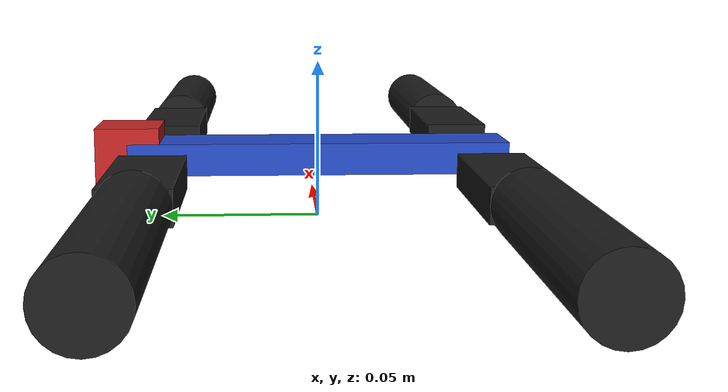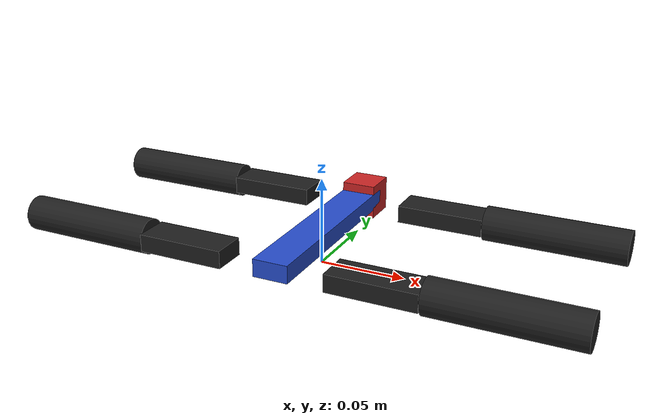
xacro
<?xml version="1.6"?>
<!-- Revolute-Revolute Manipulator -->
<robot name="quadquad" xmlns:xacro="http://www.ros.org/wiki/xacro">

  <!-- Constants for robot dimensions -->
  <xacro:property name="PI" value="3.1415926535897931"/>
  <xacro:property name="mass" value="10" /> <!-- arbitrary value for mass -->
  <xacro:property name="height" value=".02" />
  <xacro:property name="camera_link" value="0.02" /> <!-- Size of square 'camera' box -->

  <xacro:property name="bodyL" value="0.12" />
  <xacro:property name="bodyW" value="0.02" />
  <xacro:property name="bodyD" value="0.01" />

  <xacro:property name="hipL" value="0.05" />
  <xacro:property name="hipW" value="0.02" />
  <xacro:property name="hipD" value="0.01" />

  <xacro:property name="hipJointOffsetX" value="0.03" />
  <xacro:property name="hipJointOffsetY" value="0.05" />

  <xacro:property name="legJointOffsetX" value="0.05" />
  <xacro:property name="legJointOffsetY" value="0.00" />

  <xacro:property name="max_vel" value="4" />

  <xacro:property name="legL" value="0.08" />
  <xacro:property name="legR" value="0.01" />

  <xacro:property name="servoeffort" value="300" />

  <!-- Import all Gazebo-customization elements, including Gazebo colors -->
  <xacro:include filename="$(find quadquad_design)/design/quadquad.gazebo" />

  <!-- Import Rviz colors -->
  <xacro:include filename="$(find quadquad_design)/design/materials.xacro" />

  <!-- Base Link -->
  <link name="body">
    <collision>
      <origin xyz="0 0 ${height}" rpy="0 0 0"/>
      <geometry>
	       <box size="${bodyW} ${bodyL} ${bodyD}"/>
      </geometry>
    </collision>

    <visual>
      <origin xyz="0 0 ${height}" rpy="0 0 0"/>
      <geometry>
	       <box size="${bodyW} ${bodyL} ${bodyD}"/>
      </geometry>
      <material name="blue"/>
    </visual>

    <inertial>
      <origin xyz="0 0 ${height}" rpy="0 0 0"/>
      <mass value="${mass}"/>
      <inertia
    	  ixx="${mass / .1 * (hipW*hipW + bodyL*bodyL)}" ixy="0.0" ixz="0.0"
    	  iyy="${mass / .1 * (bodyL*bodyL + hipW*hipW)}" iyz="0.0"
    	  izz="${mass / .1 * (hipW*hipW + hipW*hipW)}"/>
    </inertial>
  </link>

  <!-- Camera link -->
  <joint name="camera_joint" type="fixed">
    <axis xyz="0 0 0" />
    <origin xyz="0 ${bodyL/2} ${height}" rpy="0 0 ${PI/2}"/>
    <parent link="body"/>
    <child link="camera_link"/>
  </joint>

  <!-- Camera -->

  <link name="camera_link">
    <collision>
      <origin xyz="0 0 0" rpy="0 0 0"/>
      <geometry>
         <box size="${camera_link} ${camera_link} ${camera_link}"/>
      </geometry>
    </collision>

    <visual>
      <origin xyz="0 0 0" rpy="0 0 0"/>
      <geometry>
         <box size="${camera_link} ${camera_link} ${camera_link}"/>
      </geometry>
      <material name="red"/>
    </visual>

    <inertial>
      <mass value="1e-5" />
      <origin xyz="0 0 0" rpy="0 0 0"/>
      <inertia ixx="1e-6" ixy="0" ixz="0" iyy="1e-6" iyz="0" izz="1e-6" />
    </inertial>
  </link>

<!-- hips -->
  <!-- flHip -->
  <!--${hipJointOffsetX + hipL/2} ${hipJointOffsetY + hipW/2} ${height}-->
  <link name="flHip">
    <collision>
      <origin xyz="${-hipL/2} 0 0" rpy="0 0 0"/>
      <geometry>
        <box size="${hipL} ${hipW} ${hipD}"/>
      </geometry>
    </collision>

    <visual>
      <origin xyz="${-hipL/2} 0 0" rpy="0 0 0"/>
      <geometry>
        <box size="${hipL} ${hipW} ${hipD}"/>
      </geometry>
      <material name="black"/>
    </visual>

    <inertial>
      <origin xyz="${-hipL/2} 0 0" rpy="0 0 0"/>
        <mass value="${mass}"/>
      <inertia
        ixx="${mass / .1 * (hipL*hipL + hipW*hipW)}" ixy="0.0" ixz="0.0"
        iyy="${mass / .1 * (hipW*hipW + hipL*hipL)}" iyz="0.0"
        izz="${mass / .1 * (hipL*hipL + hipL*hipL)}"/>
    </inertial>
  </link>

  <joint name="flHip_joint" type="revolute">
    <parent link="body"/>
    <child link="flHip"/>
    <origin xyz="${-hipJointOffsetX} ${hipJointOffsetY} ${height}" rpy="0 0 0"/>
    <axis xyz="0 0 1"/>
    <dynamics damping="0.7"/>
    <limit lower="${-PI/2}" upper="${PI/2}" effort="${servoeffort}" velocity="${max_vel}" />
  </joint>

    <!-- frHip -->
  <!--${hipJointOffsetX + hipL/2} ${hipJointOffsetY + hipW/2} ${height}-->
  <link name="frHip">
    <collision>
      <origin xyz="${hipL/2} 0 0" rpy="0 0 0"/>
      <geometry>
        <box size="${hipL} ${hipW} ${hipD}"/>
      </geometry>
    </collision>

    <visual>
      <origin xyz="${hipL/2} 0 0" rpy="0 0 0"/>
      <geometry>
        <box size="${hipL} ${hipW} ${hipD}"/>
      </geometry>
      <material name="black"/>
    </visual>

    <inertial>
      <origin xyz="${hipL/2} 0 0" rpy="0 0 0"/>
        <mass value="${mass}"/>
      <inertia
        ixx="${mass / .1 * (hipL*hipL + hipW*hipW)}" ixy="0.0" ixz="0.0"
        iyy="${mass / .1 * (hipW*hipW + hipL*hipL)}" iyz="0.0"
        izz="${mass / .1 * (hipL*hipL + hipL*hipL)}"/>
    </inertial>
  </link>

  <joint name="frHip_joint" type="revolute">
    <parent link="body"/>
    <child link="frHip"/>
    <origin xyz="${hipJointOffsetX} ${hipJointOffsetY} ${height}" rpy="0 0 0"/>
    <axis xyz="0 0 -1"/>
    <dynamics damping="0.7"/>
    <limit lower="${-PI/2}" upper="${PI/2}" effort="${servoeffort}" velocity="${max_vel}" />
  </joint>

  <!-- blHip -->
  <!--${hipJointOffsetX + hipL/2} ${hipJointOffsetY + hipW/2} ${height}-->
  <link name="blHip">
    <collision>
      <origin xyz="${-hipL/2} 0 0" rpy="0 0 0"/>
      <geometry>
        <box size="${hipL} ${hipW} ${hipD}"/>
      </geometry>
    </collision>

    <visual>
      <origin xyz="${-hipL/2} 0 0" rpy="0 0 0"/>
      <geometry>
        <box size="${hipL} ${hipW} ${hipD}"/>
      </geometry>
      <material name="black"/>
    </visual>

    <inertial>
      <origin xyz="${-hipL/2} 0 0" rpy="0 0 0"/>
        <mass value="${mass}"/>
      <inertia
        ixx="${mass / .1 * (hipL*hipL + hipW*hipW)}" ixy="0.0" ixz="0.0"
        iyy="${mass / .1 * (hipW*hipW + hipL*hipL)}" iyz="0.0"
        izz="${mass / .1 * (hipL*hipL + hipL*hipL)}"/>
    </inertial>
  </link>

  <joint name="blHip_joint" type="revolute">
    <parent link="body"/>
    <child link="blHip"/>
    <origin xyz="${-hipJointOffsetX} ${-hipJointOffsetY} ${height}" rpy="0 0 0"/>
    <axis xyz="0 0 1"/>
    <dynamics damping="0.7"/>
    <limit lower="${-PI/2}" upper="${PI/2}" effort="${servoeffort}" velocity="${max_vel}" />
  </joint>

  <!-- brHip -->
  <!--${hipJointOffsetX + hipL/2} ${hipJointOffsetY + hipW/2} ${height}-->
  <link name="brHip">
    <collision>
      <origin xyz="${hipL/2} 0 0" rpy="0 0 0"/>
      <geometry>
        <box size="${hipL} ${hipW} ${hipD}"/>
      </geometry>
    </collision>

    <visual>
      <origin xyz="${hipL/2} 0 0" rpy="0 0 0"/>
      <geometry>
        <box size="${hipL} ${hipW} ${hipD}"/>
      </geometry>
      <material name="black"/>
    </visual>

    <inertial>
      <origin xyz="${hipL/2} 0 0" rpy="0 0 0"/>
        <mass value="${mass}"/>
      <inertia
        ixx="${mass / .1 * (hipL*hipL + hipW*hipW)}" ixy="0.0" ixz="0.0"
        iyy="${mass / .1 * (hipW*hipW + hipL*hipL)}" iyz="0.0"
        izz="${mass / .1 * (hipL*hipL + hipL*hipL)}"/>
    </inertial>
  </link>

  <joint name="brHip_joint" type="revolute">
    <parent link="body"/>
    <child link="brHip"/>
    <origin xyz="${hipJointOffsetX} ${-hipJointOffsetY} ${height}" rpy="0 0 0"/>
    <axis xyz="0 0 -1"/>
    <dynamics damping="0.7"/>
    <limit lower="${-PI/2}" upper="${PI/2}" effort="${servoeffort}" velocity="${max_vel}" />
  </joint>

  <!-- legs -->
  <!-- flLeg -->
  <link name="flLeg">
      <collision>
        <origin xyz="${-legL/2} 0 0" rpy="0 ${PI/2} 0"/>
        <geometry>
          <cylinder length="${legL}" radius="${legR}"/>
        </geometry>
      </collision>

      <visual>
        <origin xyz="${-legL/2} 0 0" rpy="0 ${PI/2} 0"/>
        <geometry>
          <cylinder length="${legL}" radius="${legR}"/>
        </geometry>
        <material name="black"/>
      </visual>

      <inertial>
        <origin xyz="${-legL/2} 0 0" rpy="0 ${PI/2} 0"/>
          <mass value="${mass}"/>
        <inertia
          ixx="${mass / .1 * (legL*legL + legR*legR)}" ixy="0.0" ixz="0.0"
          iyy="${mass / .1 * (legR*legR + hipL*legL)}" iyz="0.0"
          izz="${mass / .1 * (legL*legL + legL*legL)}"/>
      </inertial>
    </link>

    <joint name="flLeg_joint" type="revolute">
      <parent link="flHip"/>
      <child link="flLeg"/>
      <origin xyz="${-(legJointOffsetX)} ${legJointOffsetY} 0" rpy="0 0 0"/>
      <axis xyz="0 -1 0"/>
      <dynamics damping="0.7"/>
      <limit lower="${-PI/2}" upper="${PI/2}" effort="${servoeffort}" velocity="${max_vel}" />
    </joint>

  <!-- frLeg -->
  <link name="frLeg">
      <collision>
        <origin xyz="${legL/2} 0 0" rpy="0 ${PI/2} 0"/>
        <geometry>
          <cylinder length="${legL}" radius="${legR}"/>
        </geometry>
      </collision>

      <visual>
        <origin xyz="${legL/2} 0 0" rpy="0 ${PI/2} 0"/>
        <geometry>
          <cylinder length="${legL}" radius="${legR}"/>
        </geometry>
        <material name="black"/>
      </visual>

      <inertial>
        <origin xyz="${legL/2} 0 0" rpy="0 ${PI/2} 0"/>
          <mass value="${mass}"/>
        <inertia
          ixx="${mass / .1 * (legL*legL + legR*legR)}" ixy="0.0" ixz="0.0"
          iyy="${mass / .1 * (legR*legR + hipL*legL)}" iyz="0.0"
          izz="${mass / .1 * (legL*legL + legL*legL)}"/>
      </inertial>
    </link>

    <joint name="frLeg_joint" type="revolute">
      <parent link="frHip"/>
      <child link="frLeg"/>
      <origin xyz="${(legJointOffsetX)} ${legJointOffsetY} 0" rpy="0 0 0"/>
      <axis xyz="0 1 0"/>
      <dynamics damping="0.7"/>
      <limit lower="${-PI/2}" upper="${PI/2}" effort="${servoeffort}" velocity="${max_vel}" />
    </joint>

  <!-- blLeg -->
  <link name="blLeg">
      <collision>
        <origin xyz="${-legL/2} 0 0" rpy="0 ${PI/2} 0"/>
        <geometry>
          <cylinder length="${legL}" radius="${legR}"/>
        </geometry>
      </collision>

      <visual>
        <origin xyz="${-legL/2} 0 0" rpy="0 ${PI/2} 0"/>
        <geometry>
          <cylinder length="${legL}" radius="${legR}"/>
        </geometry>
        <material name="black"/>
      </visual>

      <inertial>
        <origin xyz="${-legL/2} 0 0" rpy="0 ${PI/2} 0"/>
          <mass value="${mass}"/>
        <inertia
          ixx="${mass / .1 * (legL*legL + legR*legR)}" ixy="0.0" ixz="0.0"
          iyy="${mass / .1 * (legR*legR + hipL*legL)}" iyz="0.0"
          izz="${mass / .1 * (legL*legL + legL*legL)}"/>
      </inertial>
    </link>

    <joint name="blLeg_joint" type="revolute">
      <parent link="blHip"/>
      <child link="blLeg"/>
      <origin xyz="${-(legJointOffsetX)} ${-legJointOffsetY} 0" rpy="0 0 0"/>
      <axis xyz="0 -1 0"/>
      <dynamics damping="0.7"/>
      <limit lower="${-PI/2}" upper="${PI/2}" effort="${servoeffort}" velocity="${max_vel}" />
    </joint>

  <!-- brLeg -->
  <link name="brLeg">
      <collision>
        <origin xyz="${legL/2} 0 0" rpy="0 ${PI/2} 0"/>
        <geometry>
          <cylinder length="${legL}" radius="${legR}"/>
        </geometry>
      </collision>

      <visual>
        <origin xyz="${legL/2} 0 0" rpy="0 ${PI/2} 0"/>
        <geometry>
          <cylinder length="${legL}" radius="${legR}"/>
        </geometry>
        <material name="black"/>
      </visual>

      <inertial>
        <origin xyz="${legL/2} 0 0" rpy="0 ${PI/2} 0"/>
          <mass value="${mass}"/>
        <inertia
          ixx="${mass / .1 * (legL*legL + legR*legR)}" ixy="0.0" ixz="0.0"
          iyy="${mass / .1 * (legR*legR + hipL*legL)}" iyz="0.0"
          izz="${mass / .1 * (legL*legL + legL*legL)}"/>
      </inertial>
    </link>

    <joint name="brLeg_joint" type="revolute">
      <parent link="brHip"/>
      <child link="brLeg"/>
      <origin xyz="${legJointOffsetX} ${-legJointOffsetY} 0" rpy="0 0 0"/>
      <axis xyz="0 1 0"/>
      <dynamics damping="0.7"/>
      <limit lower="${-PI/2}" upper="${PI/2}" effort="${servoeffort}" velocity="${max_vel}" />
    </joint>

  <!-- actuators -->

  <transmission name="tran1">
    <type>transmission_interface/SimpleTransmission</type>
    <joint name="flHip_joint">
      <hardwareInterface>EffortJointInterface</hardwareInterface>
    </joint>
    <actuator name="motor1">
      <hardwareInterface>EffortJointInterface</hardwareInterface>
      <mechanicalReduction>1</mechanicalReduction>
    </actuator>
  </transmission>

  <transmission name="tran2">
    <type>effort_controllers/JointEffortController</type>
    <joint name="frHip_joint">
      <hardwareInterface>EffortJointInterface</hardwareInterface>
    </joint>
    <actuator name="motor2">
      <hardwareInterface>EffortJointInterface</hardwareInterface>
      <mechanicalReduction>1</mechanicalReduction>
    </actuator>
  </transmission>

  <transmission name="tran3">
    <type>transmission_interface/SimpleTransmission</type>
    <joint name="blHip_joint">
      <hardwareInterface>EffortJointInterface</hardwareInterface>
    </joint>
    <actuator name="motor3">
      <hardwareInterface>EffortJointInterface</hardwareInterface>
      <mechanicalReduction>1</mechanicalReduction>
    </actuator>
  </transmission>

  <transmission name="tran4">
    <type>transmission_interface/SimpleTransmission</type>
    <joint name="brHip_joint">
      <hardwareInterface>EffortJointInterface</hardwareInterface>
    </joint>
    <actuator name="motor4">
      <hardwareInterface>EffortJointInterface</hardwareInterface>
      <mechanicalReduction>1</mechanicalReduction>
    </actuator>
  </transmission>

  <!-- leg actuators -->

  <transmission name="tran5">
    <type>transmission_interface/SimpleTransmission</type>
    <joint name="flLeg_joint">
      <hardwareInterface>EffortJointInterface</hardwareInterface>
    </joint>
    <actuator name="motor8">
      <hardwareInterface>EffortJointInterface</hardwareInterface>
      <mechanicalReduction>1</mechanicalReduction>
    </actuator>
  </transmission>

  <transmission name="tran6">
    <type>transmission_interface/SimpleTransmission</type>
    <joint name="frLeg_joint">
      <hardwareInterface>EffortJointInterface</hardwareInterface>
    </joint>
    <actuator name="motor8">
      <hardwareInterface>EffortJointInterface</hardwareInterface>
      <mechanicalReduction>1</mechanicalReduction>
    </actuator>
  </transmission>

  <transmission name="tran7">
    <type>transmission_interface/SimpleTransmission</type>
    <joint name="blLeg_joint">
      <hardwareInterface>EffortJointInterface</hardwareInterface>
    </joint>
    <actuator name="motor8">
      <hardwareInterface>EffortJointInterface</hardwareInterface>
      <mechanicalReduction>1</mechanicalReduction>
    </actuator>
  </transmission>

    <transmission name="tran8">
    <type>transmission_interface/SimpleTransmission</type>
    <joint name="brLeg_joint">
      <hardwareInterface>EffortJointInterface</hardwareInterface>
    </joint>
    <actuator name="motor8">
      <hardwareInterface>EffortJointInterface</hardwareInterface>
      <mechanicalReduction>1</mechanicalReduction>
    </actuator>
  </transmission>

</robot>
